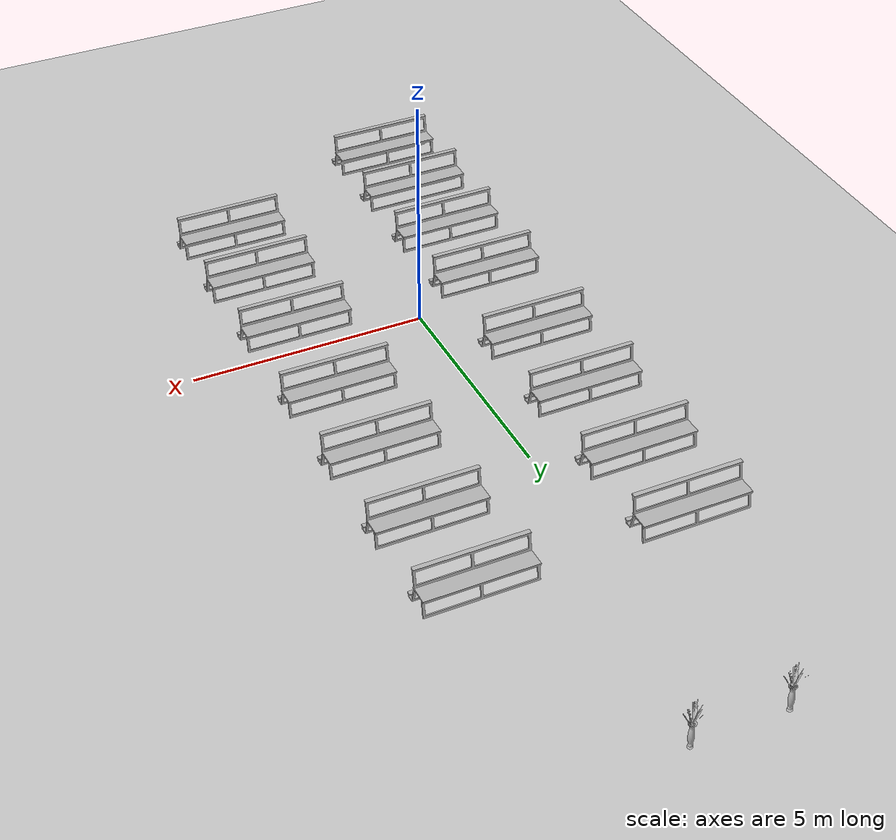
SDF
<sdf version="1.6">
 <world name="default">
  <light name="sun" type="directional">
   <pose>0 0 10 0 -0 0</pose>
   <diffuse>0.8 0.8 0.8 1</diffuse>
   <specular>0.2 0.2 0.2 1</specular>
   <attenuation>
    <range>1000</range>
    <constant>0.9</constant>
    <linear>0.01</linear>
    <quadratic>0.001</quadratic>
   </attenuation>
   <direction>-0.5 0.1 -0.9</direction>
  </light>
  <model name="ground_plane">
   <static>1</static>
   <link name="link">
    <collision name="collision">
     <geometry><plane><normal>0 0 1</normal><size>100 100</size></plane></geometry>
     <surface><friction><ode><mu>100</mu><mu2>50</mu2></ode></friction></surface>
    </collision>
    <visual name="visual">
     <cast_shadows>0</cast_shadows>
     <geometry><plane><normal>0 0 1</normal><size>100 100</size></plane></geometry>
     <material>
      <script><uri>file://media/materials/scripts/gazebo.material</uri><name>Gazebo/Grey</name></script>
     </material>
    </visual>
   </link>
  </model>
  <gravity>0 0 -9.8</gravity>
  <magnetic_field>6e-06 2.3e-05 -4.2e-05</magnetic_field>
  <atmosphere type="adiabatic"/>
  <physics name="default_physics" default="0" type="ode">
   <max_step_size>0.001</max_step_size>
   <real_time_factor>1</real_time_factor>
   <real_time_update_rate>1000</real_time_update_rate>
  </physics>
  <scene><ambient>0.4 0.4 0.4 1</ambient><background>0.7 0.7 0.7 1</background><shadows>1</shadows></scene>
  <spherical_coordinates>
   <surface_model>EARTH_WGS84</surface_model>
   <latitude_deg>0</latitude_deg>
   <longitude_deg>0</longitude_deg>
   <elevation>0</elevation>
   <heading_deg>0</heading_deg>
  </spherical_coordinates>
  <model name="Flower-2">
   <link name="link">
    <collision name="collision">
     <geometry><mesh><uri>model://Flower-2/meshes/model.dae</uri></mesh></geometry>
    </collision>
    <visual name="visual"><geometry><mesh><uri>model://Flower-2/meshes/model.dae</uri></mesh></geometry></visual>
   </link>
   <static>1</static>
   <pose>1.59277 10.1037 0.661518 0 -0 0</pose>
  </model>
  <model name="Flower-2_clone">
   <link name="link">
    <collision name="collision">
     <geometry><mesh><uri>model://Flower-2/meshes/model.dae</uri></mesh></geometry>
    </collision>
    <visual name="visual"><geometry><mesh><uri>model://Flower-2/meshes/model.dae</uri></mesh></geometry></visual>
   </link>
   <static>1</static>
   <pose>3.45023 10.0964 0.660058 0 -0 0</pose>
  </model>
  <model name="Church-bench2">
   <link name="link">
    <collision name="collision">
     <geometry><mesh><uri>model://Church-bench2/meshes/model.dae</uri></mesh></geometry>
    </collision>
    <visual name="visual">
     <geometry><mesh><uri>model://Church-bench2/meshes/model.dae</uri></mesh></geometry>
    </visual>
   </link>
   <static>1</static>
   <pose>1.25967 -4.86677 0.081936 0 -0 0</pose>
  </model>
  <model name="Church-bench2_0">
   <link name="link">
    <collision name="collision">
     <geometry><mesh><uri>model://Church-bench2/meshes/model.dae</uri></mesh></geometry>
    </collision>
    <visual name="visual">
     <geometry><mesh><uri>model://Church-bench2/meshes/model.dae</uri></mesh></geometry>
    </visual>
   </link>
   <static>1</static>
   <pose>1.28167 -3.09721 0.071976 0 -0 0</pose>
  </model>
  <model name="Church-bench2_1">
   <link name="link">
    <collision name="collision">
     <geometry><mesh><uri>model://Church-bench2/meshes/model.dae</uri></mesh></geometry>
    </collision>
    <visual name="visual">
     <geometry><mesh><uri>model://Church-bench2/meshes/model.dae</uri></mesh></geometry>
    </visual>
   </link>
   <static>1</static>
   <pose>1.24621 -1.17646 0.065224 0 -0 0</pose>
  </model>
  <model name="Church-bench2_2">
   <link name="link">
    <collision name="collision">
     <geometry><mesh><uri>model://Church-bench2/meshes/model.dae</uri></mesh></geometry>
    </collision>
    <visual name="visual">
     <geometry><mesh><uri>model://Church-bench2/meshes/model.dae</uri></mesh></geometry>
    </visual>
   </link>
   <static>1</static>
   <pose>1.27494 1.17341 0.069043 0 -0 0</pose>
  </model>
  <model name="Church-bench2_3">
   <link name="link">
    <collision name="collision">
     <geometry><mesh><uri>model://Church-bench2/meshes/model.dae</uri></mesh></geometry>
    </collision>
    <visual name="visual">
     <geometry><mesh><uri>model://Church-bench2/meshes/model.dae</uri></mesh></geometry>
    </visual>
   </link>
   <static>1</static>
   <pose>1.27159 3.21998 0.06516 0 -0 0</pose>
  </model>
  <model name="Church-bench2_4">
   <link name="link">
    <collision name="collision">
     <geometry><mesh><uri>model://Church-bench2/meshes/model.dae</uri></mesh></geometry>
    </collision>
    <visual name="visual">
     <geometry><mesh><uri>model://Church-bench2/meshes/model.dae</uri></mesh></geometry>
    </visual>
   </link>
   <static>1</static>
   <pose>1.27618 5.33786 0.062704 0 -0 0</pose>
  </model>
  <model name="Church-bench2_5">
   <link name="link">
    <collision name="collision">
     <geometry><mesh><uri>model://Church-bench2/meshes/model.dae</uri></mesh></geometry>
    </collision>
    <visual name="visual">
     <geometry><mesh><uri>model://Church-bench2/meshes/model.dae</uri></mesh></geometry>
    </visual>
   </link>
   <static>1</static>
   <pose>1.24919 7.30557 0.067659 0 -0 0</pose>
  </model>
  <model name="Church-bench2_6">
   <link name="link">
    <collision name="collision">
     <geometry><mesh><uri>model://Church-bench2/meshes/model.dae</uri></mesh></geometry>
    </collision>
    <visual name="visual">
     <geometry><mesh><uri>model://Church-bench2/meshes/model.dae</uri></mesh></geometry>
    </visual>
   </link>
   <static>1</static>
   <pose>-3.11594 -6.5039 0.156597 0 -0 0</pose>
  </model>
  <model name="Church-bench2_7">
   <link name="link">
    <collision name="collision">
     <geometry><mesh><uri>model://Church-bench2/meshes/model.dae</uri></mesh></geometry>
    </collision>
    <visual name="visual">
     <geometry><mesh><uri>model://Church-bench2/meshes/model.dae</uri></mesh></geometry>
    </visual>
   </link>
   <static>1</static>
   <pose>-3.12563 -4.87501 0.116103 0 -0 0</pose>
  </model>
  <model name="Church-bench2_8">
   <link name="link">
    <collision name="collision">
     <geometry><mesh><uri>model://Church-bench2/meshes/model.dae</uri></mesh></geometry>
    </collision>
    <visual name="visual">
     <geometry><mesh><uri>model://Church-bench2/meshes/model.dae</uri></mesh></geometry>
    </visual>
   </link>
   <static>1</static>
   <pose>-3.09755 -3.07013 0.118984 0 -0 0</pose>
  </model>
  <model name="Church-bench2_9">
   <link name="link">
    <collision name="collision">
     <geometry><mesh><uri>model://Church-bench2/meshes/model.dae</uri></mesh></geometry>
    </collision>
    <visual name="visual">
     <geometry><mesh><uri>model://Church-bench2/meshes/model.dae</uri></mesh></geometry>
    </visual>
   </link>
   <static>1</static>
   <pose>-3.11 -1.14854 0.120128 0 -0 0</pose>
  </model>
  <model name="Church-bench2_10">
   <link name="link">
    <collision name="collision">
     <geometry><mesh><uri>model://Church-bench2/meshes/model.dae</uri></mesh></geometry>
    </collision>
    <visual name="visual">
     <geometry><mesh><uri>model://Church-bench2/meshes/model.dae</uri></mesh></geometry>
    </visual>
   </link>
   <static>1</static>
   <pose>-3.11572 1.22228 0.12302 0 -0 0</pose>
  </model>
  <model name="Church-bench2_11">
   <link name="link">
    <collision name="collision">
     <geometry><mesh><uri>model://Church-bench2/meshes/model.dae</uri></mesh></geometry>
    </collision>
    <visual name="visual">
     <geometry><mesh><uri>model://Church-bench2/meshes/model.dae</uri></mesh></geometry>
    </visual>
   </link>
   <static>1</static>
   <pose>-3.11719 3.27418 0.112629 0 -0 0</pose>
  </model>
  <model name="Church-bench2_12">
   <link name="link">
    <collision name="collision">
     <geometry><mesh><uri>model://Church-bench2/meshes/model.dae</uri></mesh></geometry>
    </collision>
    <visual name="visual">
     <geometry><mesh><uri>model://Church-bench2/meshes/model.dae</uri></mesh></geometry>
    </visual>
   </link>
   <static>1</static>
   <pose>-3.14136 5.34371 0.097022 0 -0 0</pose>
  </model>
  <model name="Church-bench2_13">
   <link name="link">
    <collision name="collision">
     <geometry><mesh><uri>model://Church-bench2/meshes/model.dae</uri></mesh></geometry>
    </collision>
    <visual name="visual">
     <geometry><mesh><uri>model://Church-bench2/meshes/model.dae</uri></mesh></geometry>
    </visual>
   </link>
   <static>1</static>
   <pose>-3.14482 7.27795 0.094542 0 -0 0</pose>
  </model>
 </world>
</sdf>
